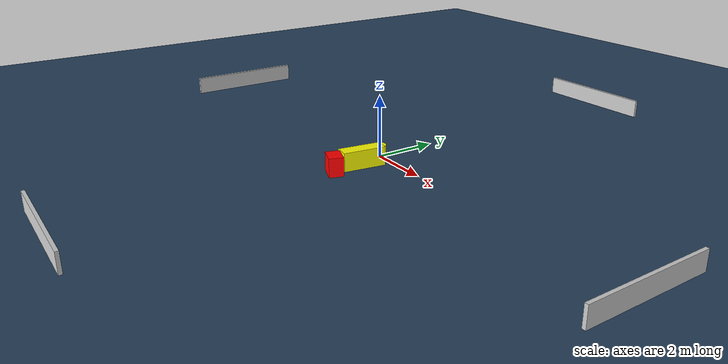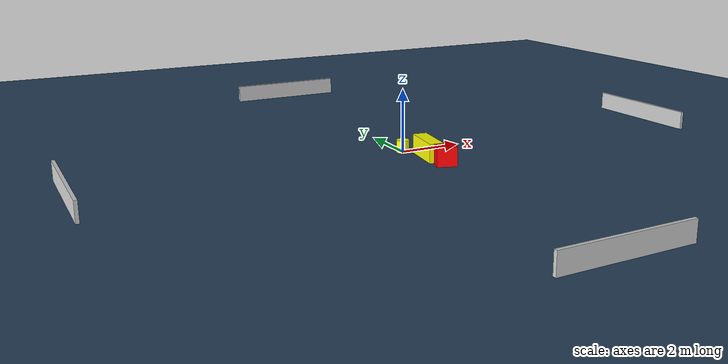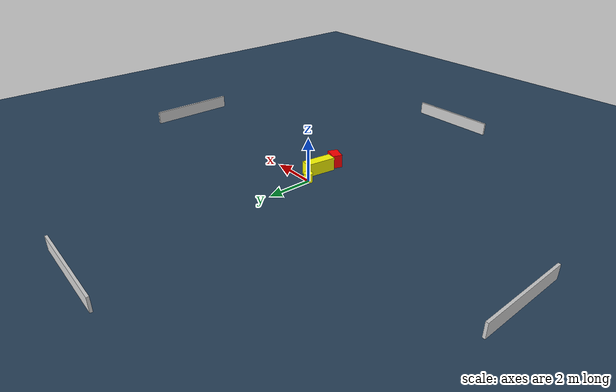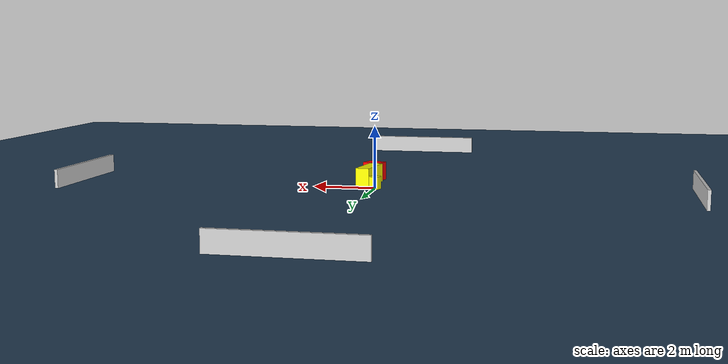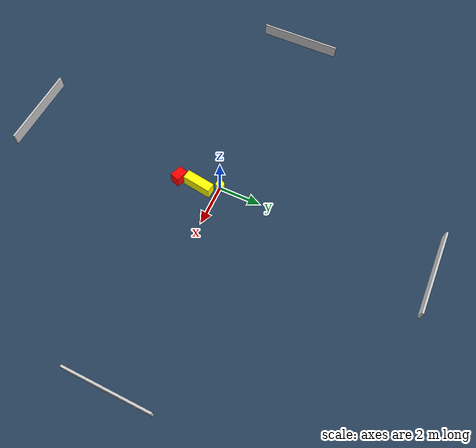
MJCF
<?xml version="1.0" ?>
<mujoco model="generated_environment">
  <option timestep="0.01" integrator="RK4" cone="elliptic"/>
  <default>
    <geom density="1"/>
  </default>
  <asset>
    <texture builtin="gradient" height="3072" name="skybox" rgb1="0.3 0.5 0.7" rgb2="0 0 0" type="skybox" width="512"/>
    <texture builtin="checker" height="300" name="groundplane" rgb1="0.2 0.3 0.4" rgb2="0.1 0.2 0.3" type="2d" width="300"/>
    <material name="groundplane" reflectance="0.2" texrepeat="5 5" texture="groundplane"/>
  </asset>
  <worldbody>
    <light dir="0 0 -1" directional="true" pos="0 0 1.5"/>
    <geom condim="3" friction="0.5 0.005 0.001" material="groundplane" name="floor" pos="0 0 0" size="0 0 0.05" type="plane"/>
    <body name="walls">
      <geom name="wall_1" condim="4" pos="-10.0 0.0 0.3" rgba="0.800000011920929 0.800000011920929 0.800000011920929 1.0" size="0.05 2.0 0.3" type="box"/>
      <geom name="wall_2" condim="4" pos="10.0 0.0 0.3" rgba="0.800000011920929 0.800000011920929 0.800000011920929 1.0" size="0.05 2.0 0.3" type="box"/>
      <geom name="wall_3" condim="4" pos="0.0 -10.0 0.3" rgba="0.800000011920929 0.800000011920929 0.800000011920929 1.0" size="2.0 0.05 0.3" type="box"/>
      <geom name="wall_4" condim="4" pos="0.0 10.0 0.3" rgba="0.800000011920929 0.800000011920929 0.800000011920929 1.0" size="2.0 0.05 0.3" type="box"/>
    </body>
    <body name="robot">
      <joint name="joint_x" type="slide" pos="0 0 0" axis="1 0 0"/>
      <joint name="joint_y" type="slide" pos="0 0 0" axis="0 1 0"/>
      <geom name="robot" type="cylinder" pos="0.0 0.0 0.2" size="0.2 0.2 0.0" mass="5.0" friction="1.0 0.005 0.0001" condim="4" rgba="1.0 1.0 0.0 1.0"/>
    </body>
    <body name="obstacle_1_movable">
      <geom name="obstacle_1_movable" condim="4" pos="0.37361175921850254 -0.9133901583746079 0.3" euler="0 0 261.9500612746846" friction="0.0 0.005 0.001" rgba="1.0 1.0 0.0 1.0" size="0.6825923705317267 0.2221851711063742 0.3" type="box" mass="0.1"/>
      <joint type="free"/>
    </body>
    <body name="obstacle_2_static">
      <geom name="obstacle_2_static" condim="4" pos="0.3998251640608631 -1.9071024907733454 0.3" euler="0 0 339.97597628742847" friction="0.0 0.005 0.001" rgba="1.0 0.0 0.0 1.0" size="0.3093478486545286 0.22650602713529142 0.3" type="box"/>
    </body>
  </worldbody>
  <actuator>
    <motor name="actuator_x" joint="joint_x" gear="1" ctrlrange="-1 1"/>
    <motor name="actuator_y" joint="joint_y" gear="1" ctrlrange="-1 1"/>
  </actuator>
</mujoco>
